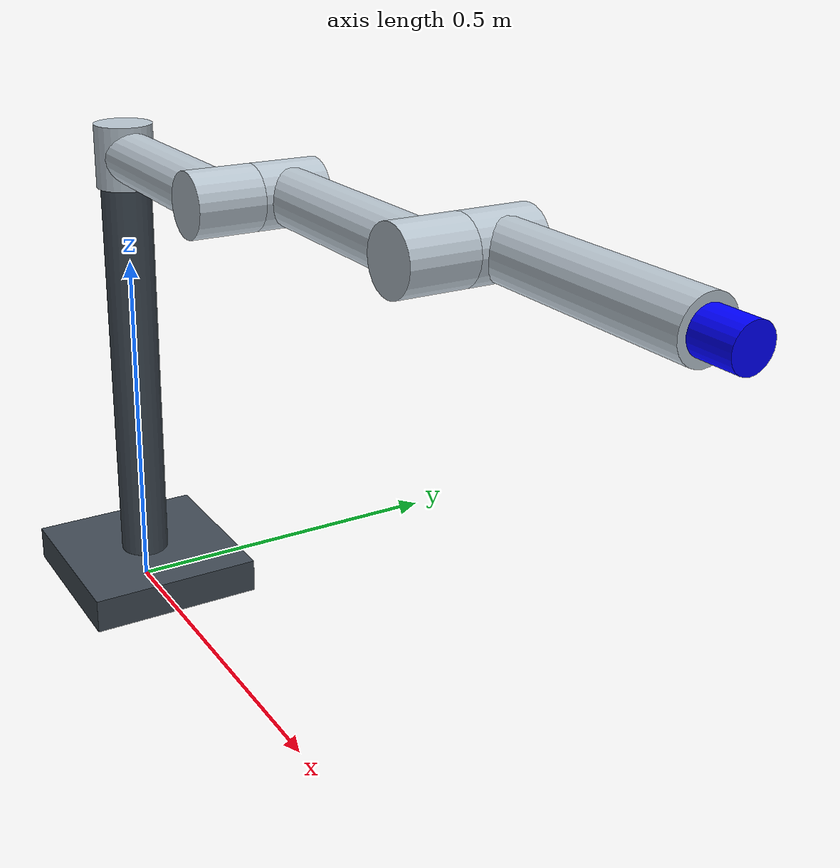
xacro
<?xml version="1.0"?>
<robot name="3r_robot_arm" xmlns:xacro="http://www.ros.org/wiki/xacro">
  <xacro:include filename="properties.xacro"/>
  <xacro:include filename="components.xacro"/>

  <!--Attach base_link to world -->
  <link name="world"/>
  <joint name="joint_world_base" type="fixed">
    <parent link="world"/>
    <child link="base_link"/>
    <origin xyz="0 0 0" rpy="0 0 0"/>
  </joint>

  <!-- Base platform -->
  <link name="base_link">
    <visual>
      <origin xyz="0 0 ${base_height / 2.0}"/>
      <geometry>
        <box size="${base_width} ${base_length} ${base_height}"/>
      </geometry>
      <material name="base_gray"/>
    </visual>
    <collision>
      <origin xyz="0 0 ${base_height / 2.0}"/>
      <geometry>
        <box size="${base_width} ${base_length} ${base_height}"/>
      </geometry>
    </collision>
    <xacro:box_inertia origin_xyz="0 0 ${base_height / 2.0}" mass="${base_mass}" base_width="${base_width}" base_length="${base_length}" base_height="${base_height}"/>
  </link>

  <link name="pedestal_link">
    <visual>
      <origin xyz="0 0 ${pedestal_height / 2.0}"/>
      <geometry>
        <cylinder length="${pedestal_height}" radius="${pedestal_radius}"/>
      </geometry>
      <material name="base_gray"/>
    </visual>
    <collision>
      <origin xyz="0 0 ${pedestal_height / 2.0}"/>
      <geometry>
        <cylinder length="${pedestal_height}" radius="${pedestal_radius}"/>
      </geometry>
    </collision>
    <xacro:z_aligned_cylinder_inertia
      origin_xyz="0 0 ${pedestal_height / 2.0}"
      mass="${pedestal_mass}"
      radius="${pedestal_radius}"
      length="${pedestal_height}"/>
  </link>
  <joint name="joint_base_pedestal" type="fixed">
    <parent link="base_link"/>
    <child link="pedestal_link"/>
    <origin xyz="0 0 ${base_height}" rpy="0 0 0"/>
  </joint>

  <!-- Circular shoulder pivot housing is rotates about the Z axis. -->
  <link name="arm_link_1">
    <xacro:arm_segment length="${arm_length}" mass="${arm_mass}" joint_axis="z"/>
    <!-- Shoulder housing, located at the far end of link 1. -->
    <visual>
      <origin xyz="${arm_length} 0 0" rpy="${-pi / 2.0} 0 0"/>
      <geometry>
        <cylinder radius="${joint_radius}" length="${joint_length}"/>
      </geometry>
      <material name="arm_silver"/>
    </visual>
    <collision>
      <origin xyz="${arm_length} 0 0" rpy="${-pi / 2.0} 0 0"/>
      <geometry>
        <cylinder radius="${joint_radius}" length="${joint_length}"/>
      </geometry>
    </collision>
  </link>
  <joint name="joint_pedestal_arm1" type="continuous">
    <parent link="pedestal_link"/>
    <child link="arm_link_1"/>
    <origin xyz="0 0 ${pedestal_height}" rpy="0 0 0"/>
    <axis xyz="0 0 1"/>
    <limit effort="${joint_effort}" velocity="${joint_velocity}"/>
    <dynamics damping="0.15" friction="0.02"/>
  </joint>

  <!-- Planar arm. Both joints rotate about the same axis -->
  <link name="arm_link_2">
    <xacro:arm_segment length="${arm_length}" mass="${arm_mass}"/>
    <!-- Elbow housing, located at the far end of link 2. -->
    <visual>
      <origin xyz="${arm_length} 0 0" rpy="${-pi / 2.0} 0 0"/>
      <geometry>
        <cylinder radius="${joint_radius}" length="${joint_length}"/>
      </geometry>
      <material name="arm_silver"/>
    </visual>
    <collision>
      <origin xyz="${arm_length} 0 0" rpy="${-pi / 2.0} 0 0"/>
      <geometry>
        <cylinder radius="${joint_radius}" length="${joint_length}"/>
      </geometry>
    </collision>
  </link>
  <joint name="joint_arm1_arm2" type="continuous">
    <parent link="arm_link_1"/>
    <child link="arm_link_2"/>
    <origin xyz="${arm_length} ${joint_length} 0" rpy="0 0 0"/>
    <axis xyz="0 1 0"/>
    <limit effort="${joint_effort}" velocity="${joint_velocity}"/>
    <dynamics damping="0.15" friction="0.02"/>
  </joint>

  <link name="arm_link_3">
    <xacro:arm_segment length="${arm_length}" mass="0.6"/>
  </link>
  <joint name="joint_arm2_arm3" type="continuous">
    <parent link="arm_link_2"/>
    <child link="arm_link_3"/>
    <origin xyz="${arm_length} ${joint_length} 0" rpy="0 0 0"/>
    <axis xyz="0 1 0"/>
    <limit effort="${joint_effort}" velocity="${joint_velocity}"/>
    <dynamics damping="0.10" friction="0.02"/>
  </joint>

  <!-- End effector -->
  <link name="end_effector_link">
    <visual>
      <origin xyz="${end_effector_length / 2.0} 0 0" rpy="0 ${-pi / 2.0} 0"/>
      <geometry>
        <cylinder radius="${end_effector_radius}" length="${end_effector_length}"/>
      </geometry>
      <material name="end_effector_blue"/>
    </visual>
    <collision>
      <origin xyz="${end_effector_length / 2.0} 0 0" rpy="0 ${-pi / 2.0} 0"/>
      <geometry>
        <cylinder radius="${end_effector_radius}" length="${end_effector_length}"/>
      </geometry>
    </collision>
    <xacro:x_aligned_cylinder_inertia origin_xyz="${end_effector_length / 2.0} 0 0" mass="${end_effector_mass}" radius="${end_effector_radius}" length="${end_effector_length}"/>
  </link>
  <joint name="joint_arm2_end-effector" type="fixed">
    <parent link="arm_link_3"/>
    <child link="end_effector_link"/>
    <origin xyz="${arm_length} 0 0" rpy="0 0 0"/>
  </joint>
</robot>

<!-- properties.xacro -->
<robot xmlns:xacro="http://www.ros.org/wiki/xacro">
  <!-- All dimensions are in meters, masses in kilograms. -->
  <xacro:property name="base_width" value="0.25"/>
  <xacro:property name="base_length" value="0.25"/>
  <xacro:property name="base_height" value="0.05"/>
  <xacro:property name="base_mass" value="1.0"/>

  <xacro:property name="pedestal_height" value="0.6"/>
  <xacro:property name="pedestal_radius" value="0.035"/>
  <xacro:property name="pedestal_mass" value="2.0"/>

  <xacro:property name="arm_length" value="0.3"/>
  <xacro:property name="arm_radius" value="0.035"/>
  <xacro:property name="arm_mass" value="0.8"/>

  <xacro:property name="joint_radius" value="0.04"/>
  <xacro:property name="joint_length" value="0.085"/>

  <xacro:property name="end_effector_length" value="0.05"/>
  <xacro:property name="end_effector_radius" value="0.025"/>
  <xacro:property name="end_effector_mass" value="0.1"/>

  <xacro:property name="joint_effort" value="20.0"/>
  <xacro:property name="joint_velocity" value="1.5"/>

  <material name="base_gray"><color rgba="0.25 0.29 0.33 1"/></material>
  <material name="arm_silver"><color rgba="0.72 0.77 0.81 1"/></material>
  <material name="end_effector_blue"><color rgba="0 0 1 1"/></material>
</robot>

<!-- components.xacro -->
<robot xmlns:xacro="http://www.ros.org/wiki/xacro">
  <!-- Inertia tag. -->
  <xacro:macro name="box_inertia" params="origin_xyz mass base_width base_length base_height">
    <inertial>
      <origin xyz="${origin_xyz}" rpy="0 0 0"/>
      <mass value="${mass}"/>
      <inertia
        ixx="${mass * (base_length*base_length + base_height*base_height) / 12.0}"
        ixy="0"
        ixz="0"
        iyy="${mass * (base_width*base_width + base_height*base_height) / 12.0}"
        iyz="0"
        izz="${mass * (base_width*base_width + base_length*base_length) / 12.0}"/>
    </inertial>
  </xacro:macro>

  <xacro:macro name="z_aligned_cylinder_inertia" params="origin_xyz mass radius length">
    <inertial>
      <origin xyz="${origin_xyz}" rpy="0 0 0"/>
      <mass value="${mass}"/>
      <inertia
        ixx="${mass * (3*radius*radius + length*length) / 12.0}"
        ixy="0"
        ixz="0"
        iyy="${mass * (3*radius*radius + length*length) / 12.0}"
        iyz="0"
        izz="${mass * radius*radius / 2.0}"/>
    </inertial>
  </xacro:macro>

  <xacro:macro name="y_aligned_cylinder_inertia" params="origin_xyz mass radius length">
    <inertial>
      <origin xyz="${origin_xyz}" rpy="0 0 0"/>
      <mass value="${mass}"/>
      <inertia
        ixx="${mass * (3*radius*radius + length*length) / 12.0}"
        ixy="0"
        ixz="0"
        iyy="${mass * radius*radius / 2.0}"
        iyz="0"
        izz="${mass * (3*radius*radius + length*length) / 12.0}"/>
    </inertial>
  </xacro:macro>

  <xacro:macro name="x_aligned_cylinder_inertia" params="origin_xyz mass radius length">
    <inertial>
      <origin xyz="${origin_xyz}" rpy="0 0 0"/>
      <mass value="${mass}"/>
      <inertia
        ixx="${mass * radius*radius / 2.0}"
        ixy="0"
        ixz="0"
        iyy="${mass * (3*radius*radius + length*length) / 12.0}"
        iyz="0"
        izz="${mass * (3*radius*radius + length*length) / 12.0}"/>
    </inertial>
  </xacro:macro>

  <!-- Cylinder representing the body of the arm -->
  <xacro:macro name="arm_body" params="length radius material">
    <visual>
      <origin xyz="${length / 2.0} 0 0" rpy="0 ${-pi / 2.0} 0"/>
      <geometry>
        <cylinder radius="${radius}" length="${length}"/>
      </geometry>
      <material name="${material}"/>
    </visual>
    <collision>
      <origin xyz="${length / 2.0} 0 0" rpy="0 ${-pi / 2.0} 0"/>
      <geometry>
        <cylinder radius="${radius}" length="${length}"/>
      </geometry>
    </collision>
  </xacro:macro>

  <!-- Cylinder axis aligned with Y, centered on the current link frame. -->
  <xacro:macro name="arm_joint_disc" params="radius length material">
    <visual>
      <origin xyz="0 0 0" rpy="${-pi / 2.0} 0 0"/>
      <geometry>
        <cylinder radius="${radius}" length="${length}"/>
      </geometry>
      <material name="${material}"/>
    </visual>
    <collision>
      <origin xyz="0 0 0" rpy="${-pi / 2.0} 0 0"/>
      <geometry>
        <cylinder radius="${radius}" length="${length}"/>
      </geometry>
    </collision>
  </xacro:macro>

  <!-- Rotating arm segment and its circular mounting flange. -->
  <xacro:macro name="arm_segment" params="length mass joint_axis:='y'">
    <xacro:if value="${joint_axis == 'z'}">
      <visual>
        <origin xyz="0 0 0" rpy="0 0 0"/>
        <geometry>
          <cylinder radius="${joint_radius}" length="${joint_length}"/>
        </geometry>
        <material name="arm_silver"/>
      </visual>
      <collision>
        <origin xyz="0 0 0" rpy="0 0 0"/>
        <geometry>
          <cylinder radius="${joint_radius}" length="${joint_length}"/>
        </geometry>
      </collision>
    </xacro:if>

    <xacro:unless value="${joint_axis == 'z'}">
      <xacro:arm_joint_disc radius="${joint_radius}" length="${joint_length}" material="arm_silver"/>
    </xacro:unless>

    <xacro:arm_body length="${length}" radius="${arm_radius}" material="arm_silver"/>
    <xacro:x_aligned_cylinder_inertia origin_xyz="${length / 2.0} 0 0" mass="${mass}" radius="${arm_radius}" length="${length}"/>
  </xacro:macro>
</robot>
